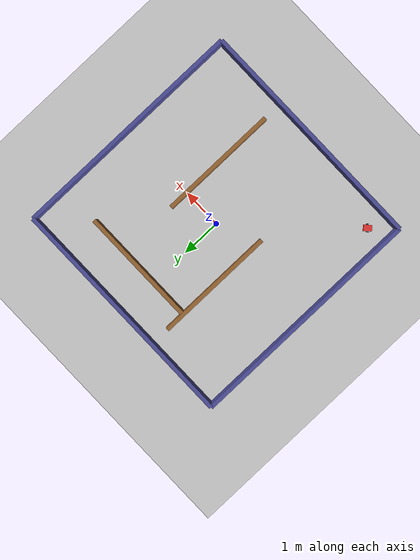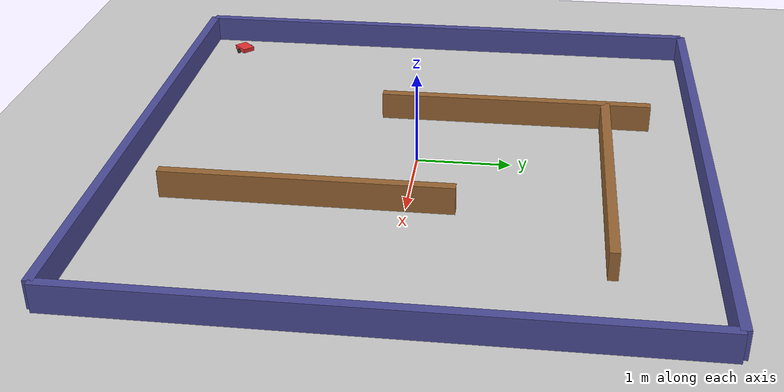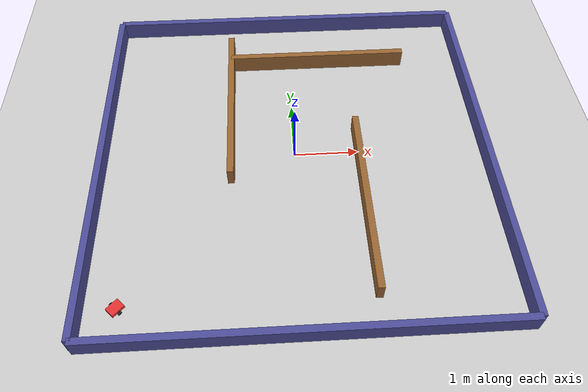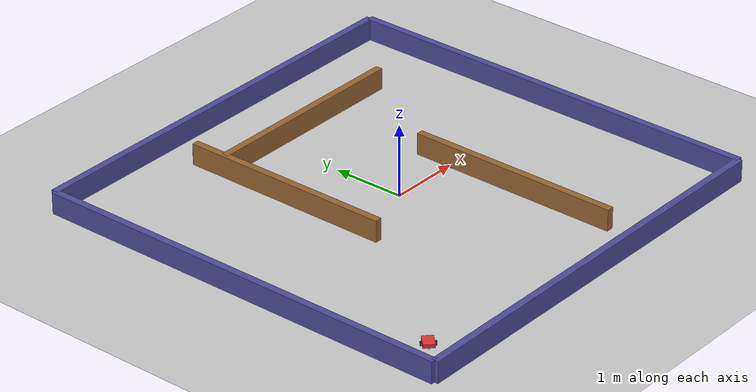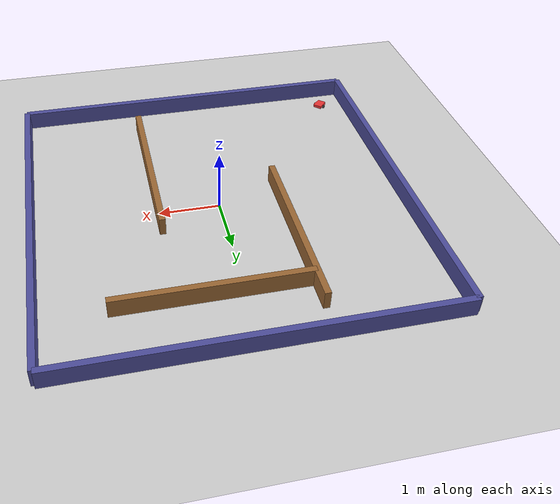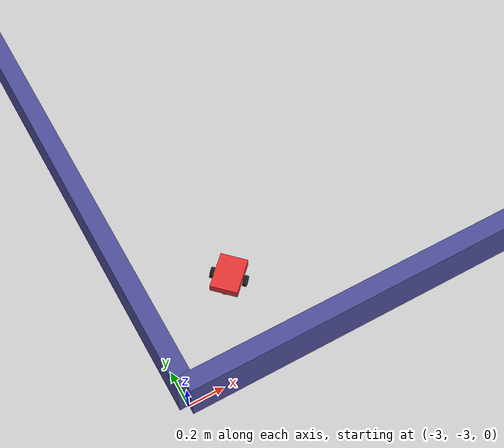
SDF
<?xml version="1.0" ?>
<!-- Simple maze world for the training car (Gazebo / Ignition SDF). -->
<sdf version="1.8">
  <world name="maze">

    <physics name="1ms" type="ignored">
      <max_step_size>0.001</max_step_size>
      <real_time_factor>1.0</real_time_factor>
    </physics>

    <plugin filename="gz-sim-physics-system" name="gz::sim::systems::Physics"/>
    <plugin filename="gz-sim-user-commands-system" name="gz::sim::systems::UserCommands"/>
    <plugin filename="gz-sim-scene-broadcaster-system" name="gz::sim::systems::SceneBroadcaster"/>
    <plugin filename="gz-sim-sensors-system" name="gz::sim::systems::Sensors">
      <render_engine>ogre2</render_engine>
    </plugin>
    <plugin filename="gz-sim-imu-system" name="gz::sim::systems::Imu"/>

    <light type="directional" name="sun">
      <cast_shadows>true</cast_shadows>
      <pose>0 0 10 0 0 0</pose>
      <diffuse>0.8 0.8 0.8 1</diffuse>
      <specular>0.2 0.2 0.2 1</specular>
      <direction>-0.5 0.1 -0.9</direction>
    </light>

    <!-- Ground -->
    <model name="ground_plane">
      <static>true</static>
      <link name="link">
        <collision name="collision">
          <geometry><plane><normal>0 0 1</normal><size>20 20</size></plane></geometry>
        </collision>
        <visual name="visual">
          <geometry><plane><normal>0 0 1</normal><size>20 20</size></plane></geometry>
          <material><ambient>0.8 0.8 0.8 1</ambient><diffuse>0.8 0.8 0.8 1</diffuse></material>
        </visual>
      </link>
    </model>

    <!-- Maze walls. Each wall is a static box. -->
    <model name="maze_walls">
      <static>true</static>
      <link name="walls">
        <!-- Outer boundary -->
        <collision name="w_north"><pose>0 3 0.15 0 0 0</pose><geometry><box><size>6 0.1 0.3</size></box></geometry></collision>
        <visual name="v_north"><pose>0 3 0.15 0 0 0</pose><geometry><box><size>6 0.1 0.3</size></box></geometry><material><diffuse>0.3 0.3 0.6 1</diffuse></material></visual>

        <collision name="w_south"><pose>0 -3 0.15 0 0 0</pose><geometry><box><size>6 0.1 0.3</size></box></geometry></collision>
        <visual name="v_south"><pose>0 -3 0.15 0 0 0</pose><geometry><box><size>6 0.1 0.3</size></box></geometry><material><diffuse>0.3 0.3 0.6 1</diffuse></material></visual>

        <collision name="w_east"><pose>3 0 0.15 0 0 0</pose><geometry><box><size>0.1 6 0.3</size></box></geometry></collision>
        <visual name="v_east"><pose>3 0 0.15 0 0 0</pose><geometry><box><size>0.1 6 0.3</size></box></geometry><material><diffuse>0.3 0.3 0.6 1</diffuse></material></visual>

        <collision name="w_west"><pose>-3 0 0.15 0 0 0</pose><geometry><box><size>0.1 6 0.3</size></box></geometry></collision>
        <visual name="v_west"><pose>-3 0 0.15 0 0 0</pose><geometry><box><size>0.1 6 0.3</size></box></geometry><material><diffuse>0.3 0.3 0.6 1</diffuse></material></visual>

        <!-- Inner maze obstacles -->
        <collision name="w_i1"><pose>-1 1 0.15 0 0 0</pose><geometry><box><size>0.1 3 0.3</size></box></geometry></collision>
        <visual name="v_i1"><pose>-1 1 0.15 0 0 0</pose><geometry><box><size>0.1 3 0.3</size></box></geometry><material><diffuse>0.6 0.4 0.2 1</diffuse></material></visual>

        <collision name="w_i2"><pose>1 -1 0.15 0 0 0</pose><geometry><box><size>0.1 3 0.3</size></box></geometry></collision>
        <visual name="v_i2"><pose>1 -1 0.15 0 0 0</pose><geometry><box><size>0.1 3 0.3</size></box></geometry><material><diffuse>0.6 0.4 0.2 1</diffuse></material></visual>

        <collision name="w_i3"><pose>0.5 2 0.15 0 0 0</pose><geometry><box><size>3 0.1 0.3</size></box></geometry></collision>
        <visual name="v_i3"><pose>0.5 2 0.15 0 0 0</pose><geometry><box><size>3 0.1 0.3</size></box></geometry><material><diffuse>0.6 0.4 0.2 1</diffuse></material></visual>
      </link>
    </model>

    <!-- Include the car model -->
    <include>
      <uri>model://car</uri>
      <pose>-2.5 -2.5 0.05 0 0 0.785</pose>
    </include>

  </world>
</sdf>

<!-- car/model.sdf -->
<!-- Differential-drive car with three ray (lidar-style) distance sensors and an IMU. -->
<sdf version="1.8">
  <model name="car">
    <pose>0 0 0.05 0 0 0</pose>

    <!-- Chassis -->
    <link name="chassis">
      <pose>0 0 0.05 0 0 0</pose>
      <inertial>
        <mass>1.0</mass>
        <inertia><ixx>0.01</ixx><iyy>0.01</iyy><izz>0.01</izz><ixy>0</ixy><ixz>0</ixz><iyz>0</iyz></inertia>
      </inertial>
      <collision name="collision"><geometry><box><size>0.2 0.15 0.05</size></box></geometry></collision>
      <visual name="visual">
        <geometry><box><size>0.2 0.15 0.05</size></box></geometry>
        <material><diffuse>0.9 0.2 0.2 1</diffuse></material>
      </visual>

      <!-- Distance sensors: name maps to app/config.py SENSOR_NAMES -->
      <sensor name="front" type="gpu_lidar">
        <pose>0.1 0 0.05 0 0 0</pose>
        <update_rate>10</update_rate>
        <topic>car/sensors/front</topic>
        <lidar><scan><horizontal><samples>1</samples><resolution>1</resolution><min_angle>0</min_angle><max_angle>0</max_angle></horizontal></scan>
          <range><min>0.02</min><max>2.0</max><resolution>0.01</resolution></range></lidar>
      </sensor>
      <sensor name="front_left" type="gpu_lidar">
        <pose>0.1 0.05 0.05 0 0 0.785</pose>
        <update_rate>10</update_rate>
        <topic>car/sensors/front_left</topic>
        <lidar><scan><horizontal><samples>1</samples><resolution>1</resolution><min_angle>0</min_angle><max_angle>0</max_angle></horizontal></scan>
          <range><min>0.02</min><max>2.0</max><resolution>0.01</resolution></range></lidar>
      </sensor>
      <sensor name="front_right" type="gpu_lidar">
        <pose>0.1 -0.05 0.05 0 0 -0.785</pose>
        <update_rate>10</update_rate>
        <topic>car/sensors/front_right</topic>
        <lidar><scan><horizontal><samples>1</samples><resolution>1</resolution><min_angle>0</min_angle><max_angle>0</max_angle></horizontal></scan>
          <range><min>0.02</min><max>2.0</max><resolution>0.01</resolution></range></lidar>
      </sensor>

      <!-- Inertial measurement unit: 6-axis (accel + gyro), maps to app IMU features -->
      <sensor name="imu" type="imu">
        <pose>0 0 0.05 0 0 0</pose>
        <always_on>1</always_on>
        <update_rate>50</update_rate>
        <topic>car/imu</topic>
      </sensor>
    </link>

    <!-- Wheels -->
    <link name="left_wheel">
      <pose>0 0.09 0.03 -1.5707 0 0</pose>
      <inertial><mass>0.1</mass><inertia><ixx>0.001</ixx><iyy>0.001</iyy><izz>0.001</izz><ixy>0</ixy><ixz>0</ixz><iyz>0</iyz></inertia></inertial>
      <collision name="collision"><geometry><cylinder><radius>0.03</radius><length>0.02</length></cylinder></geometry></collision>
      <visual name="visual"><geometry><cylinder><radius>0.03</radius><length>0.02</length></cylinder></geometry><material><diffuse>0.1 0.1 0.1 1</diffuse></material></visual>
    </link>
    <link name="right_wheel">
      <pose>0 -0.09 0.03 -1.5707 0 0</pose>
      <inertial><mass>0.1</mass><inertia><ixx>0.001</ixx><iyy>0.001</iyy><izz>0.001</izz><ixy>0</ixy><ixz>0</ixz><iyz>0</iyz></inertia></inertial>
      <collision name="collision"><geometry><cylinder><radius>0.03</radius><length>0.02</length></cylinder></geometry></collision>
      <visual name="visual"><geometry><cylinder><radius>0.03</radius><length>0.02</length></cylinder></geometry><material><diffuse>0.1 0.1 0.1 1</diffuse></material></visual>
    </link>
    <!-- Passive caster -->
    <link name="caster">
      <pose>-0.08 0 0.02 0 0 0</pose>
      <inertial><mass>0.05</mass><inertia><ixx>0.0001</ixx><iyy>0.0001</iyy><izz>0.0001</izz><ixy>0</ixy><ixz>0</ixz><iyz>0</iyz></inertia></inertial>
      <collision name="collision"><geometry><sphere><radius>0.02</radius></sphere></geometry></collision>
      <visual name="visual"><geometry><sphere><radius>0.02</radius></sphere></geometry></visual>
    </link>

    <joint name="left_wheel_joint" type="revolute">
      <parent>chassis</parent><child>left_wheel</child>
      <!-- Axis expressed in the model frame so the wheel rolls about the
           lateral (Y) axis instead of spinning about itself. -->
      <axis><xyz expressed_in="__model__">0 1 0</xyz></axis>
    </joint>
    <joint name="right_wheel_joint" type="revolute">
      <parent>chassis</parent><child>right_wheel</child>
      <axis><xyz expressed_in="__model__">0 1 0</xyz></axis>
    </joint>
    <joint name="caster_joint" type="ball">
      <parent>chassis</parent><child>caster</child>
    </joint>

    <!-- Differential drive: subscribes to /cmd_vel -->
    <plugin filename="gz-sim-diff-drive-system" name="gz::sim::systems::DiffDrive">
      <left_joint>left_wheel_joint</left_joint>
      <right_joint>right_wheel_joint</right_joint>
      <wheel_separation>0.18</wheel_separation>
      <wheel_radius>0.03</wheel_radius>
      <topic>cmd_vel</topic>
      <odom_topic>odom</odom_topic>
    </plugin>
  </model>
</sdf>
